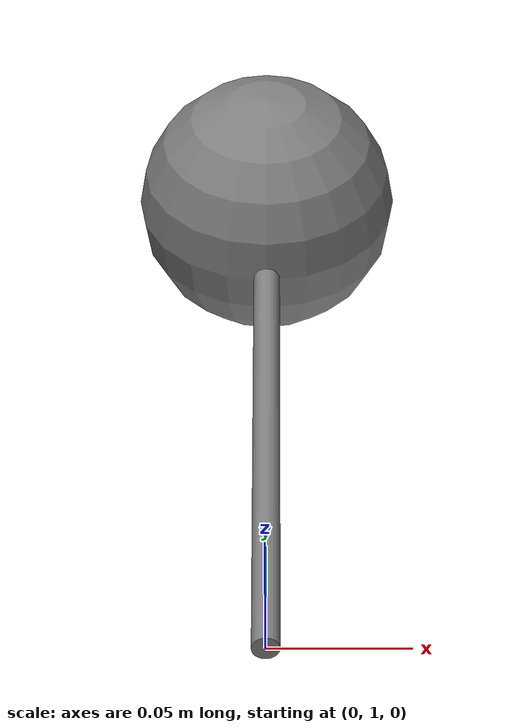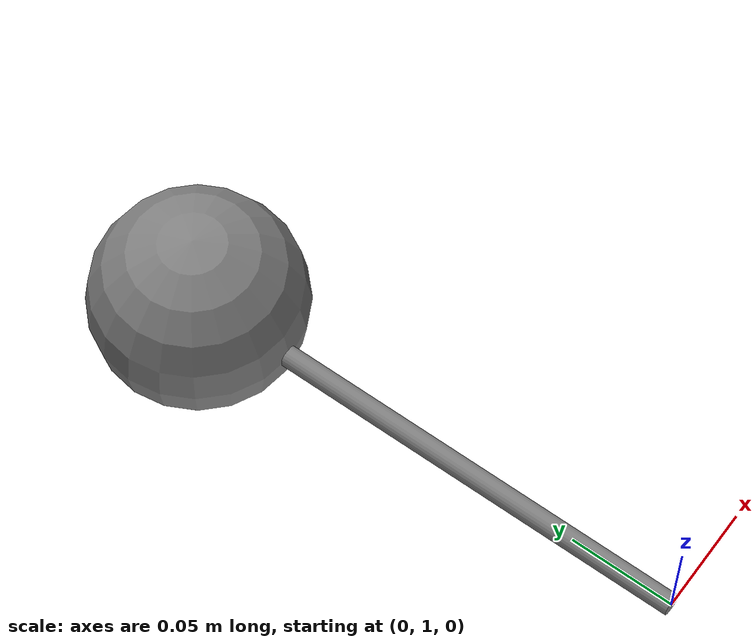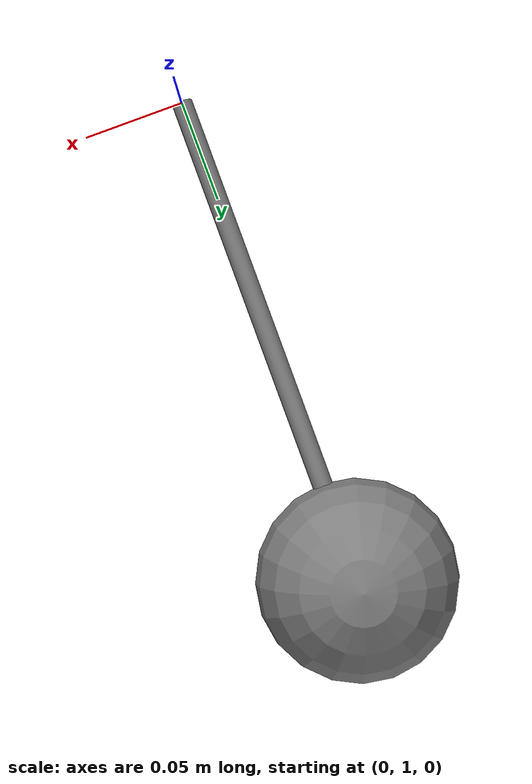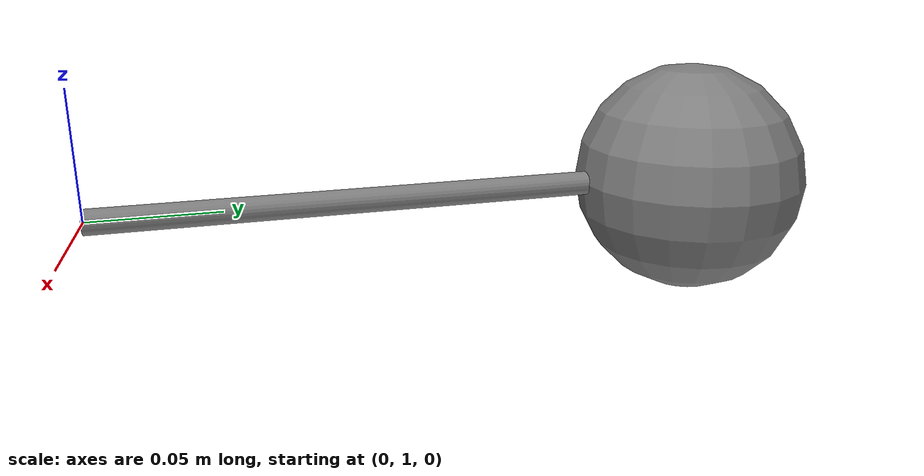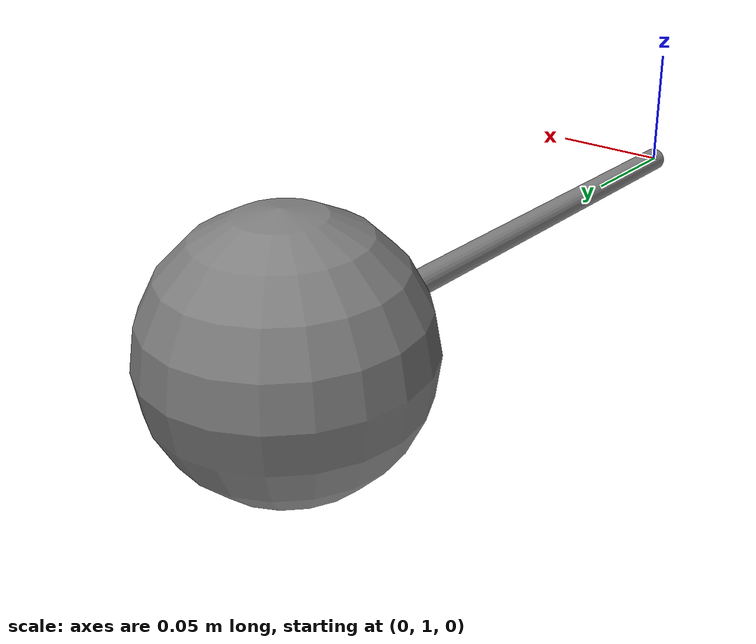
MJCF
<mujoco model="pendulum">
  <option gravity="0 -9.81 0" />

  <worldbody>
    <light diffuse=".5 .5 .5" pos="0 3 0" dir="0 -1 0"/>

    <body name="pendulum" pos="0 1 0">
      <joint name="hinge" type="hinge" axis="0 0 1" damping="0" frictionloss="0"/>

      <!-- Massless rod: length 0.2485m, mass 0, collision disabled -->
      <geom name="rod" type="cylinder" size="0.005 0.12425" fromto="0 0 0 0 0.2485 0" mass="0" contype="0" conaffinity="0"/>

      <!-- Spherical bob: diameter 0.1m (radius 0.05m), mass 1.0kg -->
      <body name="bob" pos="0 0.2485 0">
        <geom name="bob_geom" type="sphere" size="0.05" mass="1.0"/>
      </body>
    </body>
  </worldbody>

  <keyframe>
    <!-- Initial angle: +90 degrees (pi/2) from vertical. -->
    <key qpos="1.57079632679" />
  </keyframe>
</mujoco>
